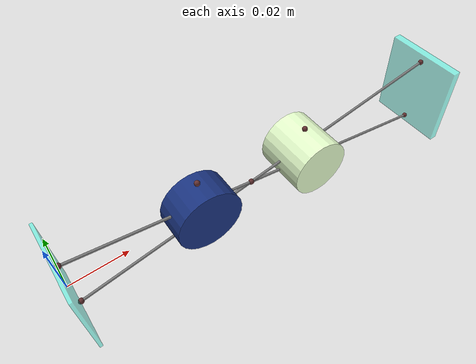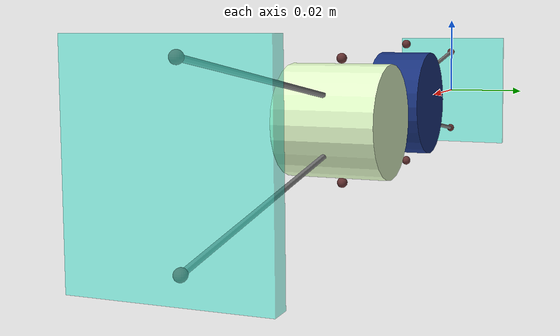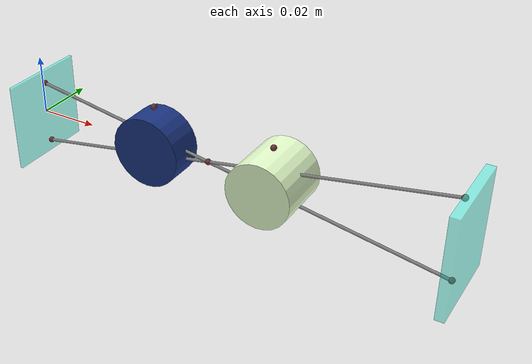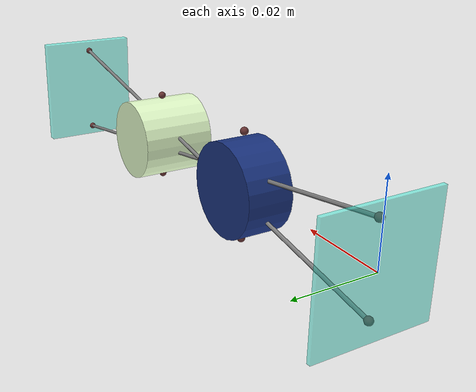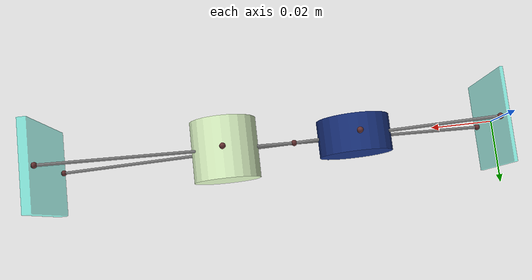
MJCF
<mujoco>
    <default>
        <geom type="capsule" size=".0025" rgba="0.2 1 0.9 0.5"/>
        <site size="0.001" rgba="0.4 0.2 0.2 1"/>
    </default>
    <worldbody>
        <light pos="0 0 2"/>
        <body pos="0 0 0" name="1">
            <geom type="box" size=".0005 .015 .015"/>
            <site name="s1" pos="0.001 0 .011"/>
            <site name="s5" pos="0.001 0 -.011"/>
            <body pos=".046 0 0">
                <geom name="R1" type="cylinder" fromto="0 .006 0 0 -.006 0" size=".012" rgba="0.1 0.2 0.5 0.9"/>
                <site name="s2" pos="0 0 .014"/>
                <site name="s6" pos="0 0 -.014"/>
                <joint name="R1"  type="hinge" range="-60 60" axis="0 1 0"/>
                <site name="s0" pos=".02 0 0"/>

                    <body pos="0.043 0 0">
                        <joint name="R2" type="hinge"  range="-10 60" axis="0 1 0"/>
                        <geom name="R2" type="cylinder" fromto="0 .01 0 0 -.01 0" size=".011" rgba="0.9 1 0.8 0.9"/>
                        <site name="s7" pos="0 0 .012"/>
                        <site name="s3" pos="0 0 -.012"/>
                        <body name="end_ef" pos="0 0 0">
                            <geom name="end_ef" pos=".06 0 0" type="box" size=".0015 .015 .017"/>
                            <site name="s8" pos=".058 0 .014"/>
                            <site name="s4" pos=".058 0 -.014"/>
                        </body>
                    </body>
            </body>
        </body>
    </worldbody>
    <tendon>
        <spatial width=".00051" springlength="100" range="0.1 0.5" solimplimit="0.001 0.001 0.001 0.5 1" solreflimit="0 10" >
            <site site="s1"/>
            <geom geom="R1" sidesite="s2"/>
            <site site="s0"/>
            <geom geom="R2" sidesite="s3"/>
            <site site="s4"/>
        </spatial>
        <spatial  width=".00051" springlength="100" range="0.1 0.5" solimplimit="0.001 0.001 0.001 0.5 1" solreflimit="0 10" >
            <site site="s5"/>
            <geom geom="R1" sidesite="s6"/>
            <site site="s0"/>
            <geom geom="R2" sidesite="s7"/>
            <site site="s8"/>
        </spatial>
    </tendon>

    <actuator>
        <motor name="A" joint="R1" gear="1" ctrllimited="true" ctrlrange="-1 1"/>
        <motor name="B" joint="R2"  gear="0.5" ctrllimited="false" ctrlrange="-1 1"/>
    </actuator>

</mujoco>
